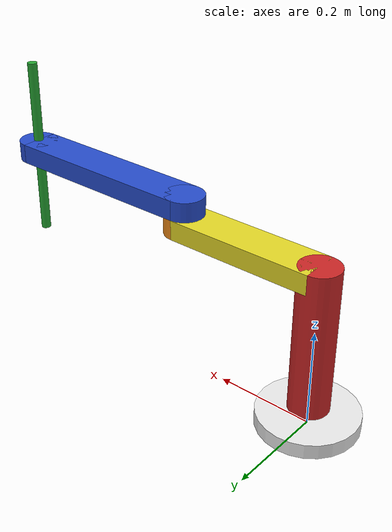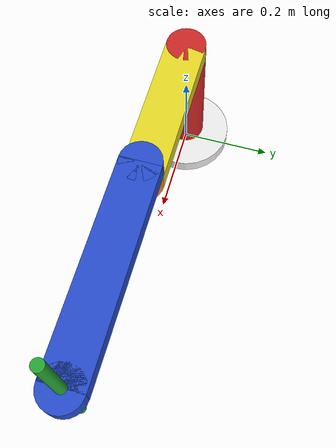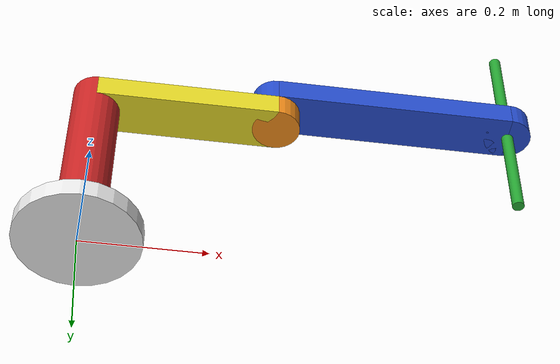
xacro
<?xml version="1.0"?>
<!-- Revolute-Revolute Manipulator -->
<!--
Copied and modified from ROS1 example -
https://github.com/ros-simulation/gazebo_ros_demos/blob/kinetic-devel/rrbot_description/urdf/rrbot.xacro
-->
<robot xmlns:xacro="http://www.ros.org/wiki/xacro" name="2dof_robot">
  <xacro:arg name="prefix" default="" />

  <!-- Import RRBot macro -->
  <xacro:include filename="$(find rrbot_description)/urdf/rrbot_description.urdf.xacro" />

  <!-- Import Rviz colors -->
  <xacro:include filename="$(find rrbot_description)/gazebo/rrbot.materials.xacro" />

  <!-- Import RRBot ros2_control description -->
  <xacro:include filename="$(find rrbot_description)/ros2_control/rrbot.ros2_control.xacro" />

  <xacro:include filename="$(find rrbot_description)/gazebo/rrbot.gazebo.xacro" />

  <xacro:rrbot parent="world" prefix="$(arg prefix)">
    <origin xyz="0 0 0" rpy="0 0 0" />
  </xacro:rrbot>

  <xacro:rrbot_gazebo prefix="$(arg prefix)" />

  <xacro:rrbot_ros2_control
    name="RRBot" prefix="$(arg prefix)" />

</robot>

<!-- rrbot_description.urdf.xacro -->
<robot xmlns:xacro="http://www.ros.org/wiki/xacro">

  <xacro:macro name="rrbot" params="parent prefix *origin">

  <!-- Constants for robot dimensions -->
  <xacro:property name="PI" value="3.141592653589793238"/>
  <xacro:property name="mass" value="1" /> <!-- arbitrary value for mass -->
  <xacro:property name="r_base" value="0.1" /> <!-- Radius of base joint -->
  <xacro:property name="h_base" value="0.03" /> <!-- Vertical height of base joint -->
  <xacro:property name="d1" value="0.3" /> <!-- Vertical height of base joint -->
  <xacro:property name="r_elb" value="0.04" /> <!-- Radius of elbows -->
  <xacro:property name="t1" value="0.04" /> <!-- Link 1 offset length -->
  <xacro:property name="a1" value="0.3" /> <!-- Link 1 offset length -->
  <xacro:property name="a2" value="0.4" /> <!-- Link 2 offset length -->
  <xacro:property name="r3" value="0.01" /> <!-- Prismatic pokey bit radius -->
  <xacro:property name="d3" value="0.5" /> <!-- Prismatic pokey bit length -->

 <link name="world"/>
  <joint name="fixed" type="fixed">
    <parent link="world"/>
    <child link="base_link"/>
    <origin xyz="0 0 ${h_base/4}"/>
    <dynamics damping="0.7"/>
  </joint>

  <link name="base_link">
    <collision>
      <geometry>
        <cylinder length="${h_base}" radius="${r_base}"/>
      </geometry>
      <origin rpy="0 0 0" xyz="0 0 ${h_base/4}"/>
      <material name="white"/>
    </collision>

    <visual>
      <geometry>
        <cylinder length="${h_base}" radius="${r_base}"/>
      </geometry>
      <origin rpy="0 0 0" xyz="0 0 ${h_base/4}"/>
      <material name="white"/>
    </visual>

    <inertial>
      <origin xyz="0 0 0" rpy="0 0 0"/>
      <mass value="${mass}"/>
      <inertia
        ixx="1.0" ixy="0.0" ixz="0.0"
        iyy="1.0" iyz="0.0"
        izz="1.0"/>
    </inertial>

  </link>

  <link name="link1">
    <collision>
      <geometry>
        <cylinder length="${d1}" radius="${r_elb}"/>
      </geometry>
      <origin rpy="0 0 0" xyz="0 0 ${h_base/2 + d1/2}"/>
      <material name="white"/>
    </collision>
    <collision>
      <geometry>
        <box size="${a1} ${r_elb*2} ${t1}"/>
      </geometry>
      <origin rpy="0 0 0" xyz="${a1/2} 0 ${h_base/2 + d1 - t1/2}"/>
      <material name="orange"/>
    </collision>
    <collision>
      <geometry>
        <cylinder length="${t1}" radius="${r_elb}"/>
      </geometry>
      <origin rpy="0 0 0" xyz="${a1} 0 ${h_base/2 + d1 - t1/2}"/>
      <material name="yellow"/>
    </collision>

    <visual>
      <geometry>
        <cylinder length="${d1}" radius="${r_elb}"/>
      </geometry>
      <origin rpy="0 0 0" xyz="0 0 ${h_base/2 + d1/2}"/>
      <material name="red"/>
    </visual>
    <visual>
      <geometry>
        <box size="${a1} ${r_elb*2} ${t1}"/>
      </geometry>
      <origin rpy="0 0 0" xyz="${a1/2} 0 ${h_base/2 + d1 - t1/2}"/>
      <material name="yellow"/>
    </visual>
    <visual>
      <geometry>
        <cylinder length="${t1}" radius="${r_elb}"/>
      </geometry>
      <origin rpy="0 0 0" xyz="${a1} 0 ${h_base/2 + d1 - t1/2}"/>
      <material name="orange"/>
    </visual>

    <inertial>
      <origin xyz="0 0 0" rpy="0 0 0"/>
      <mass value="${mass}"/>
      <inertia
        ixx="1.0" ixy="0.0" ixz="0.0"
        iyy="1.0" iyz="0.0"
        izz="1.0"/>
    </inertial>

  </link>

  <joint name="${prefix}joint1" type="revolute">
    <axis xyz="0 0 1"/>
    <limit effort="1000.0" lower="${-PI}" upper="${PI}" velocity="0.5"/>
    <origin xyz="0 0 ${h_base/2}"/>
    <parent link="base_link"/>
    <child link="link1"/>
    <dynamics damping="0.7"/>
  </joint>

  <link name="link2">
    <collision>
      <geometry>
        <cylinder length="${t1}" radius="${r_elb}"/>
      </geometry>
      <origin rpy="0 0 0" xyz="0 0 0"/>
      <material name="blue"/>
    </collision>
    <collision>
      <geometry>
        <box size="${a2} ${r_elb*2} ${t1}"/>
      </geometry>
      <origin rpy="0 0 0" xyz="${a2/2} 0 0"/>
      <material name="blue"/>
    </collision>
    <collision>
      <geometry>
        <cylinder length="${t1}" radius="${r_elb}"/>
      </geometry>
      <origin rpy="0 0 0" xyz="${a2} 0 0"/>
      <material name="blue"/>
    </collision>

    <visual>
      <geometry>
        <cylinder length="${t1}" radius="${r_elb}"/>
      </geometry>
      <origin rpy="0 0 0" xyz="0 0 0"/>
      <material name="blue"/>
    </visual>
    <visual>
      <geometry>
        <box size="${a2} ${r_elb*2} ${t1}"/>
      </geometry>
      <origin rpy="0 0 0" xyz="${a2/2} 0 0"/>
      <material name="blue"/>
    </visual>
    <visual>
      <geometry>
        <cylinder length="${t1}" radius="${r_elb}"/>
      </geometry>
      <origin rpy="0 0 0" xyz="${a2} 0 0"/>
      <material name="blue"/>
    </visual>

    <inertial>
      <origin xyz="0 0 0" rpy="0 0 0"/>
      <mass value="${mass}"/>
      <inertia
        ixx="1.0" ixy="0.0" ixz="0.0"
        iyy="1.0" iyz="0.0"
        izz="1.0"/>
    </inertial>
  </link>

  <joint name="${prefix}joint2" type="revolute">
    <axis xyz="0 0 1"/>
    <limit effort="1000.0" lower="${-PI}" upper="${PI}" velocity="0.5"/>
    <origin xyz="${a1} 0 ${h_base/2 + d1 + t1/2}"/>
    <parent link="link1"/>
    <child link="link2"/>
    <dynamics damping="0.7"/>
  </joint>

  <link name="tool_link">
    <collision>
      <geometry>
        <cylinder length="${t1 + d1 + h_base}" radius="${r3}"/>
      </geometry>
      <origin rpy="0 0 0" xyz="0 0 0"/>
      <material name="green"/>
    </collision>

    <visual>
      <geometry>
        <cylinder length="${t1 + d1 + h_base}" radius="${r3}"/>
      </geometry>
      <origin rpy="0 0 0" xyz="0 0 0"/>
      <material name="green"/>
    </visual>

    <inertial>
      <origin xyz="0 0 0" rpy="0 0 0"/>
      <mass value="${mass}"/>
      <inertia
        ixx="1.0" ixy="0.0" ixz="0.0"
        iyy="1.0" iyz="0.0"
        izz="1.0"/>
    </inertial>

  </link>

  <joint name="${prefix}joint3" type="prismatic">
    <axis xyz="0 0 1"/>
    <limit effort="1000.0" lower="${-(d1 + h_base)/2}" upper="${(d1 + h_base)/2}" velocity="0.5"/>
    <origin xyz="${a2} 0 0"/>
    <parent link="link2"/>
    <child link="tool_link"/>
    <dynamics damping="0.7"/>
  </joint>

  </xacro:macro>

</robot>
